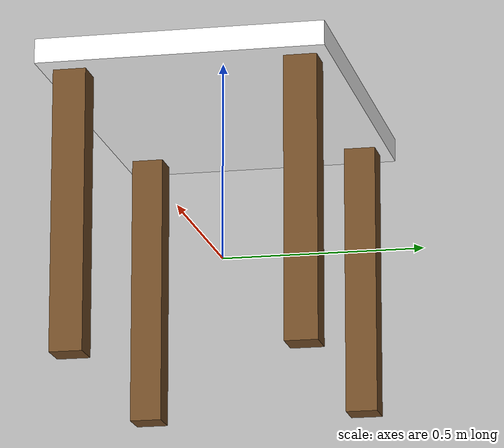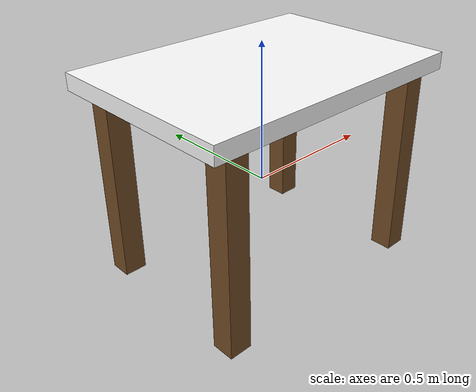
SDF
<?xml version="1.0"?>
<sdf version="1.8">
  <model name="simple_table">
    <static>true</static>
    <link name="link">
      <pose>0 0 0.4 0 0 0</pose>
      <collision name="top_col">
        <geometry><box><size>1.0 0.7 0.06</size></box></geometry>
      </collision>
      <visual name="top">
        <cast_shadows>false</cast_shadows>
        <geometry><box><size>1.0 0.7 0.06</size></box></geometry>
        <material>
          <ambient>0.55 0.4 0.25 1</ambient>
          <diffuse>1 1 1 1</diffuse>
          <pbr><metal><albedo_map>model://textures/wood.png</albedo_map></metal></pbr>
        </material>
      </visual>
      <visual name="leg1">
        <cast_shadows>false</cast_shadows>
        <pose>-0.4 -0.28 -0.37 0 0 0</pose>
        <geometry><box><size>0.08 0.08 0.7</size></box></geometry>
        <material><ambient>0.3 0.2 0.1 1</ambient><diffuse>0.45 0.3 0.15 1</diffuse></material>
      </visual>
      <visual name="leg2">
        <cast_shadows>false</cast_shadows>
        <pose>0.4 -0.28 -0.37 0 0 0</pose>
        <geometry><box><size>0.08 0.08 0.7</size></box></geometry>
        <material><ambient>0.3 0.2 0.1 1</ambient><diffuse>0.45 0.3 0.15 1</diffuse></material>
      </visual>
      <visual name="leg3">
        <cast_shadows>false</cast_shadows>
        <pose>-0.4 0.28 -0.37 0 0 0</pose>
        <geometry><box><size>0.08 0.08 0.7</size></box></geometry>
        <material><ambient>0.3 0.2 0.1 1</ambient><diffuse>0.45 0.3 0.15 1</diffuse></material>
      </visual>
      <visual name="leg4">
        <cast_shadows>false</cast_shadows>
        <pose>0.4 0.28 -0.37 0 0 0</pose>
        <geometry><box><size>0.08 0.08 0.7</size></box></geometry>
        <material><ambient>0.3 0.2 0.1 1</ambient><diffuse>0.45 0.3 0.15 1</diffuse></material>
      </visual>
    </link>
  </model>
</sdf>
